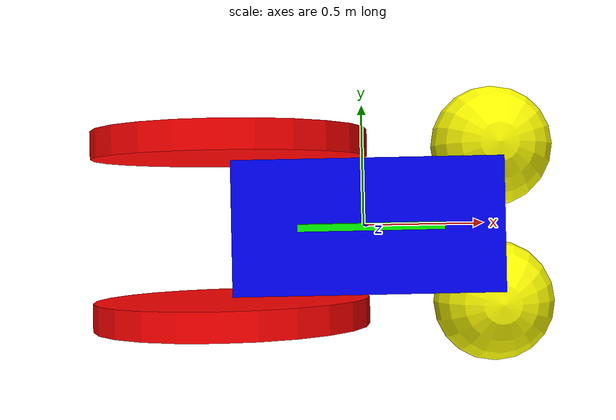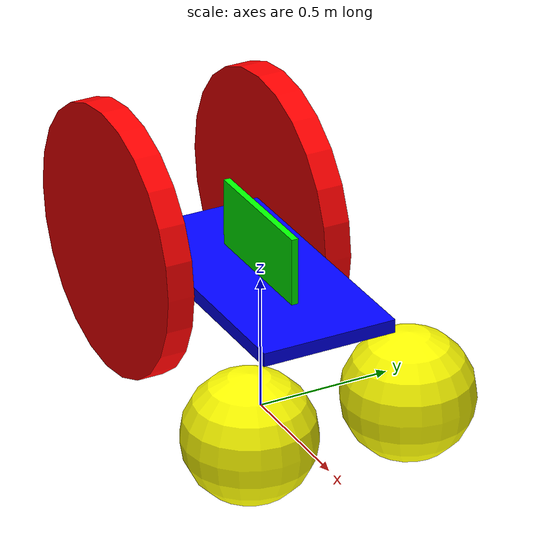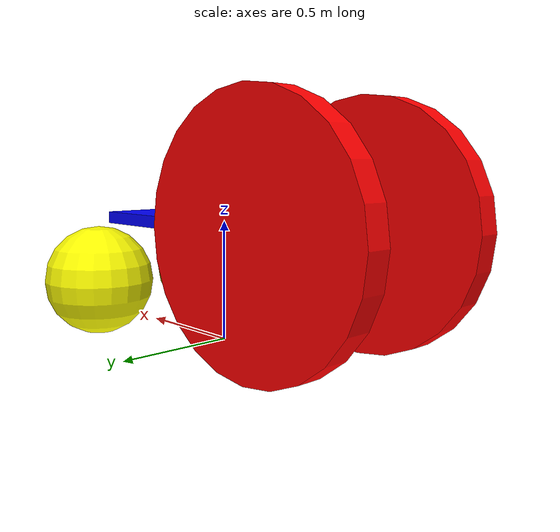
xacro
<?xml version="1.0"?>

<robot name="swim_bot"
    xmlns:xacro="http://ros.org/wiki/xacro">

    <!-- 计算惯性矩阵xacro -->

    <!-- 设置参数 -->
    <xacro:property name="pi" value="3.1415926"/>

    <xacro:property name="base_link_mass" value="0.2"/>
    <xacro:property name="base_link_length" value="1"/>
    <xacro:property name="base_link_width" value="0.5"/>
    <xacro:property name="base_link_height" value="0.05"/>

    <xacro:property name="wheel_active_mass" value="0.1"/>
    <xacro:property name="wheel_active_radius" value="0.5"/>
    <xacro:property name="wheel_active_width" value="0.1"/>
    <xacro:property name="wheel_position_biasY" value="${base_link_width/2 + wheel_active_width/2 + 0.005}"/>

    <xacro:property name="wheel_passive_mass" value="0.1"/>
    <xacro:property name="wheel_passive_radius" value="${(wheel_active_radius - base_link_height/2)/2}"/>
    <xacro:property name="wheel_passive_position_biasZ" value="${wheel_active_radius/2+base_link_height/2}"/>

    <!-- 色阶 -->
    <material name="red">
        <color rgba="1 0 0 1"/>
    </material>
    <material name="green">
        <color rgba="0 1 0 1"/>
    </material>
    <material name="blue">
        <color rgba="0 0 1 1"/>
    </material>
    <material name="yellow">
        <color rgba="1 1 0 1"/>
    </material>
    <material name="cyan">
        <color rgba="0 1 1 1"/>
    </material>
    <material name="white">
        <color rgba="1 1 1 1"/>
    </material>
    <material name="black">
        <color rgba="0 0 0 1"/>
    </material>

    <!-- 虚拟连杆 -->
    <link name="dummy_link">
        <visual>
            <geometry>
                <sphere radius="0.01"/>
            </geometry>
            <material name="green"/>
        </visual>
    </link>
    <gazebo reference = "dummy_link">
        <material>Gazebo/Green</material>
    </gazebo>

    <!-- 车身 -->
    <link name="base_link">
        <visual>
            <geometry>
                <box size="${base_link_length} ${base_link_width} ${base_link_height}" />
            </geometry>
            <origin xyz="0 0 0" rpy="0 0 0" />
            <material name="blue"/>
        </visual>
        <collision>
            <geometry>
                <box size="${base_link_length} ${base_link_width} ${base_link_height}" />
            </geometry>
            <origin xyz="0 0 0" rpy="0 0 0" />
            <material name="blue"/>
        </collision>
        <!-- 调用惯性参数矩阵函数 -->
        <xacro:Box_inertial_matrix m="${base_link_mass}" l="${base_link_length}" w="${base_link_width}" h="${base_link_height}"/>
    </link>
    <gazebo reference="base_link">
        <material>Gazebo/Blue</material>
    </gazebo>
    <joint name="base2dummy" type="fixed">
        <parent link="dummy_link"/>
        <child link="base_link"/>
        <origin xyz="0 0 ${wheel_active_radius}" rpy="0 0 0" />
    </joint>

    <!-- 主动轮 -->
    <xacro:macro name="wheel_active" params = "posflag position">
        <link name="wheel_active_${position}">
            <visual>
                <geometry>
                    <cylinder radius="${wheel_active_radius}" length="${wheel_active_width}"/>
                </geometry>
                <origin xyz="0 0 0" rpy="${pi/2} 0 0"/>
                <material name="red"/>
            </visual>
            <collision>
                <geometry>
                    <cylinder radius="${wheel_active_radius}" length="${wheel_active_width}"/>
                </geometry>
                <origin xyz="0 0 0" rpy="${pi/2} 0 0"/>
                <material name="red"/>
            </collision>
            <xacro:cylinder_inertial_matrix m="${wheel_active_mass}" r="${wheel_active_radius}" h="${wheel_active_width}"/>
        </link>
        <joint name="wheel_active_${position}_2_base_link" type="continuous">
            <parent link="base_link"/>
            <child link="wheel_active_${position}"/>
            <origin xyz="${-base_link_length/2} ${posflag * wheel_position_biasY} 0"/>
            <axis xyz="0 1 0"/>
        </joint>
        <gazebo reference="wheel_active_${position}">
            <mu1 value="200"/>
            <mu2 value="200"/>
            <material>Gazebo/Red</material>
        </gazebo>
        <transmission name="wheel_active_${position}_trans">
            <type>transmission_interface/SimpleTransmission</type>
            <joint name="wheel_active_${position}_2_base_link">
                <hardwareInterface>hardware_interface/EffortJointInterface</hardwareInterface>
            </joint>
            <actuator name="wheel_active_${position}_motor">
                <mechanicalReduction>1.0</mechanicalReduction>
            </actuator>
        </transmission>
    </xacro:macro>
    <!-- 调用函数 -->
    <xacro:wheel_active posflag="1" position="left"/>
    <xacro:wheel_active posflag="-1" position="right"/>

    <!-- 从动轮 -->
    <xacro:macro name="wheel_passive" params = "posflag position">
        <link name="wheel_passive_${position}">
            <visual>
                <geometry>
                    <sphere radius="${wheel_passive_radius}" />
                </geometry>
                <origin xyz="0 0 0" rpy="0 0 0"/>
                <material name="yellow"/>
            </visual>
            <collision>
                <geometry>
                    <sphere radius="${wheel_passive_radius}" />
                </geometry>
                <origin xyz="0 0 0" rpy="0 0 0"/>
                <material name="yellow"/>
            </collision>
            <xacro:sphere_inertial_matrix m="${wheel_passive_mass}" r="${wheel_passive_radius}" />
        </link>
        <joint name="wheel_passive_${position}_2_base_link" type="continuous">
            <parent link="base_link"/>
            <child link="wheel_passive_${position}"/>
            <origin xyz="${base_link_length/2} ${posflag * wheel_position_biasY} ${-wheel_passive_position_biasZ}"/>
            <axis xyz="0 1 0"/>
        </joint>
        <gazebo reference="wheel_passive_${position}">
            <mu1 value="0.05"/>
            <mu2 value="0.025"/>
            <material>Gazebo/Yellow</material>
        </gazebo>
        <transmission name="wheel_passive_${position}_trans">
            <type>transmission_interface/SimpleTransmission</type>
            <joint name="wheel_passive_${position}_2_base_link">
                <hardwareInterface>hardware_interface/EffortJointInterface</hardwareInterface>
            </joint>
            <actuator name="wheel_passive_${position}_motor">
                <mechanicalReduction>1.0</mechanicalReduction>
            </actuator>
        </transmission>
    </xacro:macro>
    <!-- 调用函数 -->
    <xacro:wheel_passive posflag="1" position="left"/>
    <xacro:wheel_passive posflag="-1" position="right"/>

    <!-- imu (在gazebo和rviz中显示为绿色长方体) -->
    <link name="imu_link">
        <visual>
            <geometry>
                <box size="${base_link_length/2} ${base_link_width/2} ${base_link_height/2}" />
            </geometry>
            <origin xyz="0 0 0" rpy="0 0 0" />
            <material name="green"/>
        </visual>
        <collision>
            <geometry>
                <box size="${base_link_length/2} ${base_link_width/2} ${base_link_height/2}" />
            </geometry>
            <origin xyz="0 0 0" rpy="0 0 0" />
            <material name="green"/>
        </collision>
        <xacro:Box_inertial_matrix m="${base_link_mass/4}" l="${base_link_length/2}" w="${base_link_width/2}" h="${base_link_height/2}"/>
    </link>
    <gazebo reference="imu_link">
        <material>Gazebo/Green</material>
    </gazebo>
    <joint name="imu2base" type="fixed">
        <parent link="base_link"/>
        <child link="imu_link"/>
        <!-- 若要修改IMU摆放位姿，修改下面 xyz 和 rpy 参数 -->
        <!-- xyz 为imu_link中心点相较于base_link中心点的三根轴上的偏移量 -->
        <!-- rpy 为imu_link相较于base_link的姿态角 -->
        <!-- 这里将 rpy 的 r 设置为 pi/2，表示将IMU绕 x 轴旋转 90° 摆放，以模拟上墙时的imu状态 -->
        <!-- 由于 imu 以 rpy="${pi/2} 0 0" 的姿态摆放，需要让机器人 顺时针 沿墙运动，才是对上墙状态的正确模拟 -->
        <origin xyz="0 0 ${base_link_width/4 + base_link_height/2}" rpy="${pi/2} 0 0" />
    </joint>

    <!-- ros control 插件 -->
    <gazebo>
        <plugin name="gazebo_ros_control" filename="libgazebo_ros_control.so">
            <robotNamespace>/swim_bot</robotNamespace>
        </plugin>
    </gazebo>
</robot>
